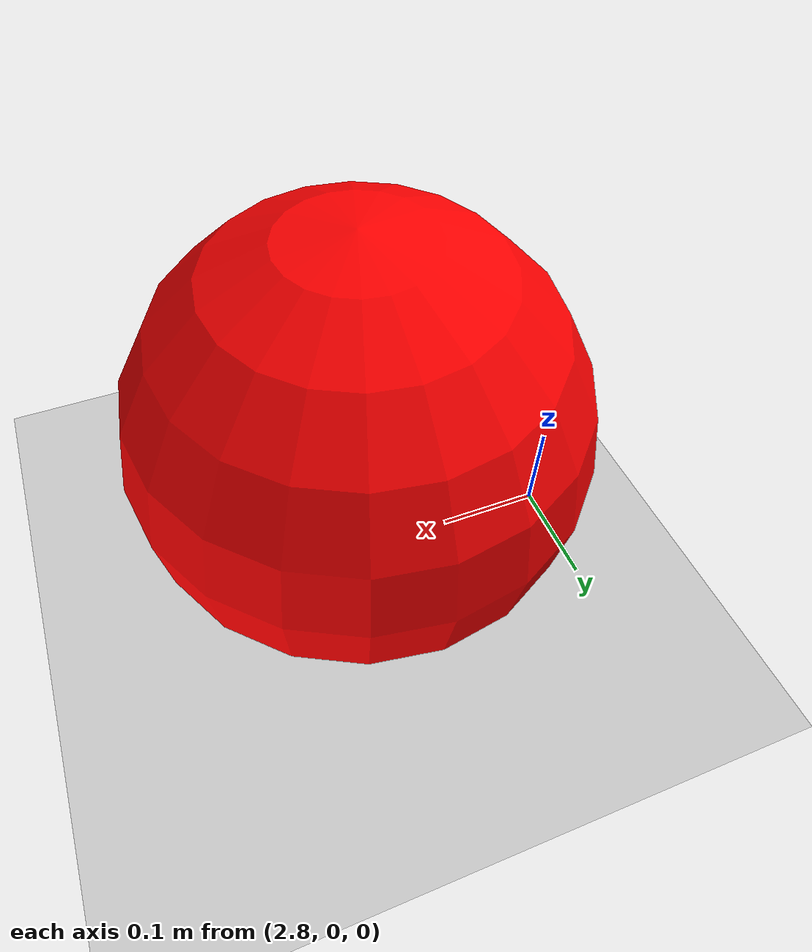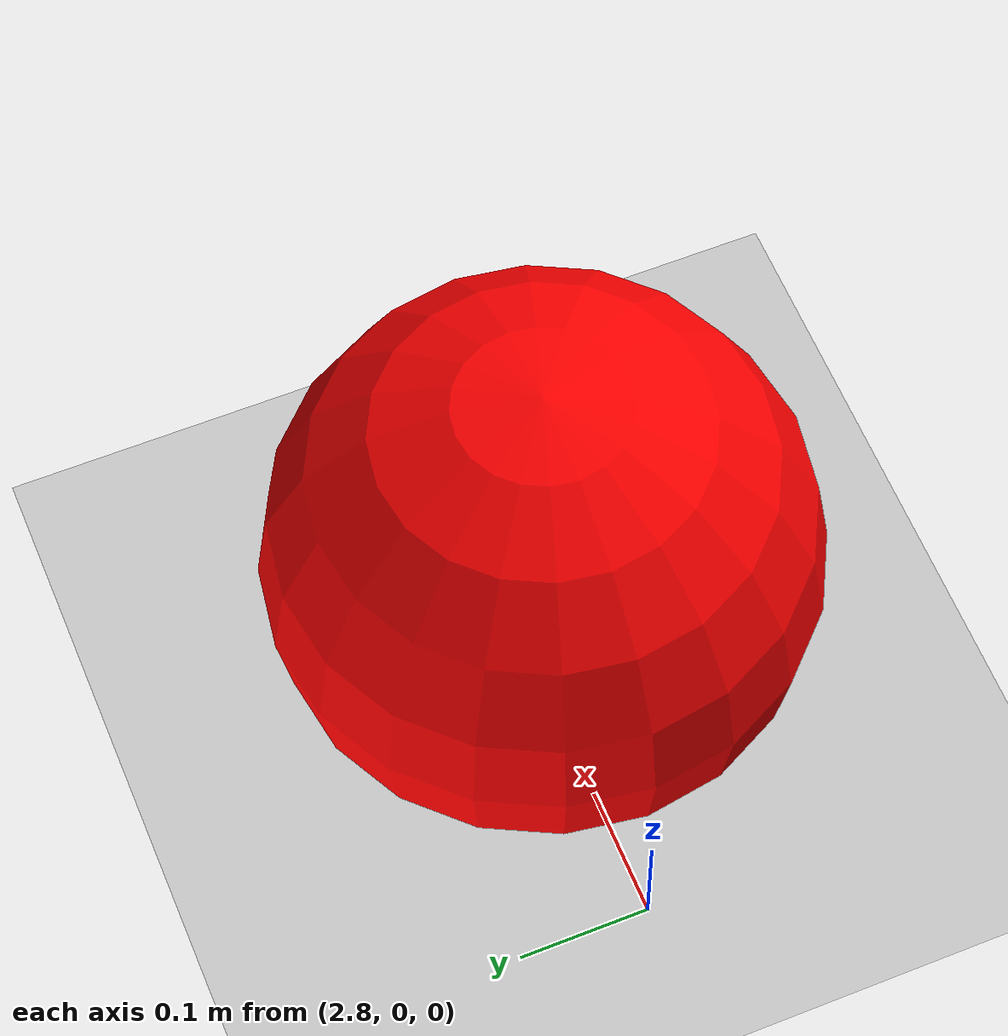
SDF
<?xml version="1.0" ?>
<sdf version="1.9">
  <world name="rolling_ball_world">
    <physics name="1ms" type="ignored">
      <max_step_size>0.001</max_step_size>
      <real_time_factor>1.0</real_time_factor>
    </physics>

    <plugin filename="gz-sim-physics-system" name="gz::sim::systems::Physics"/>
    <plugin filename="gz-sim-user-commands-system" name="gz::sim::systems::UserCommands"/>
    <plugin filename="gz-sim-scene-broadcaster-system" name="gz::sim::systems::SceneBroadcaster"/>
    <plugin filename="gz-sim-sensors-system" name="gz::sim::systems::Sensors">
      <render_engine>ogre2</render_engine>
    </plugin>
    <plugin filename="gz-sim-imu-system" name="gz::sim::systems::Imu"/>

    <light type="directional" name="sun">
      <cast_shadows>true</cast_shadows>
      <pose>0 0 10 0 0 0</pose>
      <diffuse>0.8 0.8 0.8 1</diffuse>
      <specular>0.2 0.2 0.2 1</specular>
      <attenuation>
        <range>1000</range>
        <constant>0.9</constant>
        <linear>0.01</linear>
        <quadratic>0.001</quadratic>
      </attenuation>
      <direction>-0.5 0.1 -0.9</direction>
    </light>

    <model name="ground_plane">
      <static>true</static>
      <link name="link">
        <collision name="collision">
          <geometry>
            <plane>
              <normal>0 0 1</normal>
              <size>100 100</size>
            </plane>
          </geometry>
        </collision>
        <visual name="visual">
          <geometry>
            <plane>
              <normal>0 0 1</normal>
              <size>100 100</size>
            </plane>
          </geometry>
          <material>
            <ambient>0.8 0.8 0.8 1</ambient>
            <diffuse>0.8 0.8 0.8 1</diffuse>
            <specular>0.2 0.2 0.2 1</specular>
          </material>
        </visual>
      </link>
    </model>

    <include>
      <uri>model://red_ball</uri>
      <name>red_ball</name>
      <!-- Start directly ahead of the robot and tangent to a 3 m circle. -->
      <pose>3 0 0.2 0 0 1.570796</pose>
    </include>
  </world>
</sdf>

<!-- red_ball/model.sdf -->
<sdf version="1.9">
  <model name="red_ball">
    <link name="ball">
      <inertial>
        <mass>0.5</mass>
        <inertia>
          <ixx>0.008</ixx>
          <iyy>0.008</iyy>
          <izz>0.008</izz>
        </inertia>
      </inertial>
      <collision name="collision">
        <geometry>
          <sphere>
            <radius>0.2</radius>
          </sphere>
        </geometry>
        <surface>
          <friction>
            <ode>
              <mu>1.0</mu>
              <mu2>1.0</mu2>
            </ode>
          </friction>
        </surface>
      </collision>
      <visual name="visual">
        <geometry>
          <sphere>
            <radius>0.2</radius>
          </sphere>
        </geometry>
        <material>
          <ambient>1 0 0 1</ambient>
          <diffuse>1 0 0 1</diffuse>
          <specular>0.2 0.2 0.2 1</specular>
        </material>
      </visual>
    </link>

    <!-- v=0.4 m/s and yaw_rate=v/r=0.1333 rad/s produce a 3 m circle. -->
    <plugin
      filename="gz-sim-velocity-control-system"
      name="gz::sim::systems::VelocityControl">
      <initial_linear>0.4 0 0</initial_linear>
      <initial_angular>0 0 0.1333333333</initial_angular>
    </plugin>

    <plugin
      filename="gz-sim-odometry-publisher-system"
      name="gz::sim::systems::OdometryPublisher">
      <odom_frame>world</odom_frame>
      <robot_base_frame>red_ball</robot_base_frame>
      <odom_topic>/target/ground_truth/odom</odom_topic>
      <odom_publish_frequency>30</odom_publish_frequency>
      <dimensions>3</dimensions>
    </plugin>
  </model>
</sdf>
